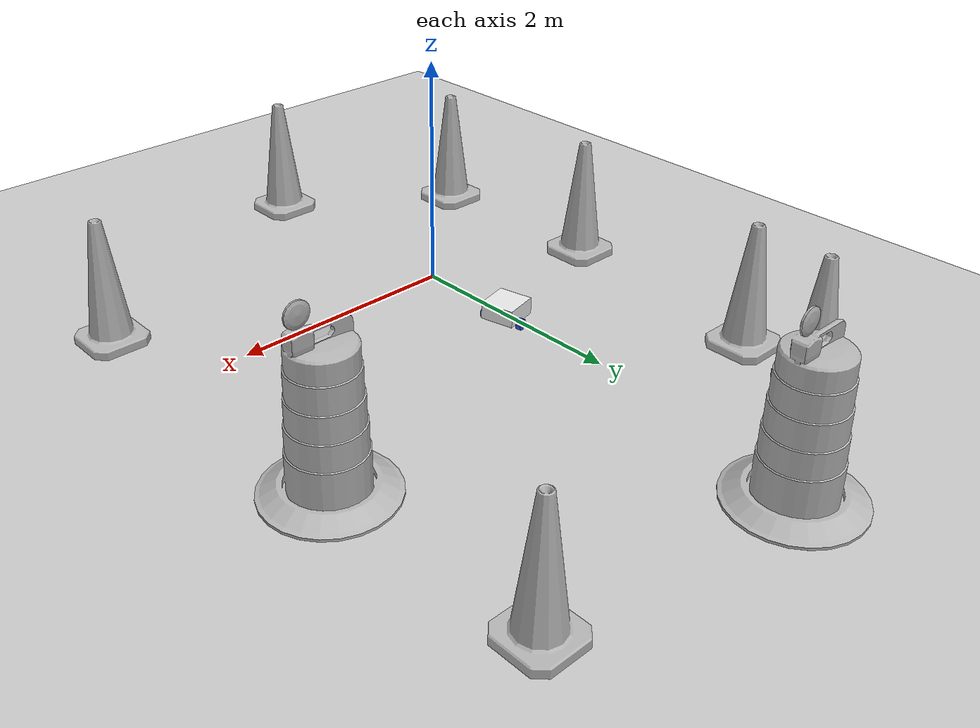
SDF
<sdf version="1.7">
 <world name="default">
  <light name="sun" type="directional">
   <pose>0 0 10 0 -0 0</pose>
   <diffuse>0.8 0.8 0.8 1</diffuse>
   <specular>0.2 0.2 0.2 1</specular>
   <attenuation>
    <range>1000</range>
    <constant>0.9</constant>
    <linear>0.01</linear>
    <quadratic>0.001</quadratic>
   </attenuation>
   <direction>-0.5 0.1 -0.9</direction>
   <spot><inner_angle>0</inner_angle><outer_angle>0</outer_angle><falloff>0</falloff></spot>
  </light>
  <model name="ground_plane">
   <static>1</static>
   <link name="link">
    <collision name="collision">
     <geometry><plane><normal>0 0 1</normal><size>100 100</size></plane></geometry>
     <surface><friction><ode><mu>100</mu><mu2>50</mu2></ode></friction></surface>
    </collision>
    <visual name="visual">
     <cast_shadows>0</cast_shadows>
     <geometry><plane><normal>0 0 1</normal><size>100 100</size></plane></geometry>
     <material>
      <script><uri>file://media/materials/scripts/gazebo.material</uri><name>Gazebo/Grey</name></script>
     </material>
    </visual>
   </link>
  </model>
  <gravity>0 0 -9.8</gravity>
  <magnetic_field>6e-06 2.3e-05 -4.2e-05</magnetic_field>
  <atmosphere type="adiabatic"/>
  <physics type="ode">
   <max_step_size>0.001</max_step_size>
   <real_time_factor>1</real_time_factor>
   <real_time_update_rate>1000</real_time_update_rate>
  </physics>
  <scene><ambient>0.4 0.4 0.4 1</ambient><background>0.7 0.7 0.7 1</background><shadows>1</shadows></scene>
  <audio><device>default</device></audio>
  <spherical_coordinates>
   <surface_model>EARTH_WGS84</surface_model>
   <latitude_deg>0</latitude_deg>
   <longitude_deg>0</longitude_deg>
   <elevation>0</elevation>
   <heading_deg>0</heading_deg>
  </spherical_coordinates>
  <model name="basic">
   <link name="base_link1">
    <inertial>
     <pose>0.065 0 0.0625 0 -0 0</pose>
     <mass>0.6</mass>
     <inertia>
      <ixx>0.00525625</ixx>
      <ixy>0</ixy>
      <ixz>0.0005625</ixz>
      <iyy>0.00593125</iyy>
      <iyz>0</iyz>
      <izz>0.008275</izz>
     </inertia>
    </inertial>
    <collision name="base_link1_fixed_joint_lump__chasis_collision">
     <pose>0.05 0 0.075 0 -0 0</pose>
     <geometry><box><size>0.3 0.3 0.15</size></box></geometry>
    </collision>
    <collision name="base_link1_fixed_joint_lump__caster_wheel_collision_1">
     <pose>0.14 0 0 0 -0 0</pose>
     <geometry><sphere><radius>0.05</radius></sphere></geometry>
     <surface><friction><ode><mu>0.01</mu><mu2>0.01</mu2></ode></friction></surface>
    </collision>
    <visual name="base_link1_fixed_joint_lump__chasis_visual">
     <pose>0.05 0 0.075 0 -0 0</pose>
     <geometry><box><size>0.3 0.3 0.15</size></box></geometry>
     <material>
      <script><name>Gazebo/White</name><uri>file://media/materials/scripts/gazebo.material</uri></script>
     </material>
    </visual>
    <visual name="base_link1_fixed_joint_lump__caster_wheel_visual_1">
     <pose>0.14 0 0 0 -0 0</pose>
     <geometry><sphere><radius>0.05</radius></sphere></geometry>
     <material>
      <script><name>Gazebo/Black</name><uri>file://media/materials/scripts/gazebo.material</uri></script>
     </material>
    </visual>
   </link>
   <joint name="left_wheel_joint" type="revolute">
    <pose relative_to="base_link1">0 0.175 0 -1.5708 0 0</pose>
    <parent>base_link1</parent>
    <child>left_wheel</child>
    <axis>
     <xyz>0 0 1</xyz>
     <limit><lower>-1e+16</lower><upper>1e+16</upper></limit>
     <dynamics><spring_reference>0</spring_reference><spring_stiffness>0</spring_stiffness></dynamics>
    </axis>
   </joint>
   <link name="left_wheel">
    <pose relative_to="left_wheel_joint">0 0 0 0 -0 0</pose>
    <inertial>
     <mass>0.1</mass>
     <inertia>
      <ixx>7.58333e-05</ixx>
      <ixy>0</ixy>
      <ixz>0</ixz>
      <iyy>7.58333e-05</iyy>
      <iyz>0</iyz>
      <izz>0.000125</izz>
     </inertia>
    </inertial>
    <collision name="left_wheel_collision">
     <geometry><cylinder><length>0.04</length><radius>0.05</radius></cylinder></geometry>
    </collision>
    <visual name="left_wheel_visual">
     <geometry><cylinder><length>0.04</length><radius>0.05</radius></cylinder></geometry>
     <material>
      <script><name>Gazebo/Blue</name><uri>file://media/materials/scripts/gazebo.material</uri></script>
     </material>
    </visual>
   </link>
   <joint name="right_wheel_joint" type="revolute">
    <pose relative_to="base_link1">0 -0.175 0 1.5708 -0 0</pose>
    <parent>base_link1</parent>
    <child>right_wheel</child>
    <axis>
     <xyz>0 0 -1</xyz>
     <limit><lower>-1e+16</lower><upper>1e+16</upper></limit>
     <dynamics><spring_reference>0</spring_reference><spring_stiffness>0</spring_stiffness></dynamics>
    </axis>
   </joint>
   <link name="right_wheel">
    <pose relative_to="right_wheel_joint">0 0 0 0 -0 0</pose>
    <inertial>
     <mass>0.1</mass>
     <inertia>
      <ixx>7.58333e-05</ixx>
      <ixy>0</ixy>
      <ixz>0</ixz>
      <iyy>7.58333e-05</iyy>
      <iyz>0</iyz>
      <izz>0.000125</izz>
     </inertia>
    </inertial>
    <collision name="right_wheel_collision">
     <geometry><cylinder><length>0.04</length><radius>0.05</radius></cylinder></geometry>
    </collision>
    <visual name="right_wheel_visual">
     <geometry><cylinder><length>0.04</length><radius>0.05</radius></cylinder></geometry>
     <material>
      <script><name>Gazebo/Blue</name><uri>file://media/materials/scripts/gazebo.material</uri></script>
     </material>
    </visual>
   </link>
   <static>0</static>
   <plugin name="diff_drive" filename="libgazebo_ros_diff_drive.so">
    <left_joint>left_wheel_joint</left_joint>
    <right_joint>right_wheel_joint</right_joint>
    <wheel_separation>0.35</wheel_separation>
    <wheel_diameter>0.1</wheel_diameter>
    <max_wheel_torque>200</max_wheel_torque>
    <max_wheel_acceleration>10.0</max_wheel_acceleration>
    <odometry_frame>odom</odometry_frame>
    <robot_base_frame>base_link</robot_base_frame>
    <publish_odom>1</publish_odom>
    <publish_odom_tf>1</publish_odom_tf>
    <publish_wheel_tf>1</publish_wheel_tf>
   </plugin>
   <pose>0.121211 1.01718 0.05 0 1.5e-05 -2.91623</pose>
  </model>
  <model name="Construction Barrel">
   <link name="link">
    <inertial>
     <pose>0 0 0.4 0 -0 0</pose>
     <mass>500</mass>
     <inertia><ixx>51.2096</ixx><iyy>51.2096</iyy><izz>25</izz><ixy>0</ixy><ixz>0</ixz><iyz>0</iyz></inertia>
    </inertial>
    <collision name="collision">
     <geometry><mesh><uri>model://construction_barrel/meshes/construction_barrel.dae</uri></mesh></geometry>
    </collision>
    <visual name="visual">
     <geometry><mesh><uri>model://construction_barrel/meshes/construction_barrel.dae</uri></mesh></geometry>
    </visual>
   </link>
   <pose>2.55956 1.83876 -1e-06 3e-06 7e-06 -1.5e-05</pose>
  </model>
  <model name="Construction Cone">
   <link name="link">
    <collision name="collision">
     <geometry>
      <mesh><scale>10 10 10</scale><uri>model://construction_cone/meshes/construction_cone.dae</uri></mesh>
     </geometry>
    </collision>
    <visual name="visual">
     <geometry>
      <mesh><scale>10 10 10</scale><uri>model://construction_cone/meshes/construction_cone.dae</uri></mesh>
     </geometry>
    </visual>
    <inertial>
     <inertia><ixx>1</ixx><ixy>0</ixy><ixz>0</ixz><iyy>1</iyy><iyz>0</iyz><izz>1</izz></inertia>
     <mass>1</mass>
    </inertial>
   </link>
   <pose>-1.27331 -1.16551 -8e-06 1e-06 -0 0</pose>
  </model>
  <model name="Construction Cone_0">
   <link name="link">
    <collision name="collision">
     <geometry>
      <mesh><scale>10 10 10</scale><uri>model://construction_cone/meshes/construction_cone.dae</uri></mesh>
     </geometry>
    </collision>
    <visual name="visual">
     <geometry>
      <mesh><scale>10 10 10</scale><uri>model://construction_cone/meshes/construction_cone.dae</uri></mesh>
     </geometry>
    </visual>
    <inertial>
     <inertia><ixx>1</ixx><ixy>0</ixy><ixz>0</ixz><iyy>1</iyy><iyz>0</iyz><izz>1</izz></inertia>
     <mass>1</mass>
    </inertial>
   </link>
   <pose>0.129894 -2.1069 -0 0 -1e-06 0</pose>
  </model>
  <model name="Construction Cone_1">
   <link name="link">
    <collision name="collision">
     <geometry>
      <mesh><scale>10 10 10</scale><uri>model://construction_cone/meshes/construction_cone.dae</uri></mesh>
     </geometry>
    </collision>
    <visual name="visual">
     <geometry>
      <mesh><scale>10 10 10</scale><uri>model://construction_cone/meshes/construction_cone.dae</uri></mesh>
     </geometry>
    </visual>
    <inertial>
     <inertia><ixx>1</ixx><ixy>0</ixy><ixz>0</ixz><iyy>1</iyy><iyz>0</iyz><izz>1</izz></inertia>
     <mass>1</mass>
    </inertial>
   </link>
   <pose>-1.34033 0.554121 -6e-06 -4e-06 0 0</pose>
  </model>
  <model name="Construction Cone_2">
   <link name="link">
    <collision name="collision">
     <geometry>
      <mesh><scale>10 10 10</scale><uri>model://construction_cone/meshes/construction_cone.dae</uri></mesh>
     </geometry>
    </collision>
    <visual name="visual">
     <geometry>
      <mesh><scale>10 10 10</scale><uri>model://construction_cone/meshes/construction_cone.dae</uri></mesh>
     </geometry>
    </visual>
    <inertial>
     <inertia><ixx>1</ixx><ixy>0</ixy><ixz>0</ixz><iyy>1</iyy><iyz>0</iyz><izz>1</izz></inertia>
     <mass>1</mass>
    </inertial>
   </link>
   <pose>-1.02416 3.25599 -9e-06 0 -0 0</pose>
  </model>
  <model name="Construction Cone_3">
   <link name="link">
    <collision name="collision">
     <geometry>
      <mesh><scale>10 10 10</scale><uri>model://construction_cone/meshes/construction_cone.dae</uri></mesh>
     </geometry>
    </collision>
    <visual name="visual">
     <geometry>
      <mesh><scale>10 10 10</scale><uri>model://construction_cone/meshes/construction_cone.dae</uri></mesh>
     </geometry>
    </visual>
    <inertial>
     <inertia><ixx>1</ixx><ixy>0</ixy><ixz>0</ixz><iyy>1</iyy><iyz>0</iyz><izz>1</izz></inertia>
     <mass>1</mass>
    </inertial>
   </link>
   <pose>-1.07459 2.5864 0 -0 -0 -0</pose>
  </model>
  <model name="Construction Cone_4">
   <link name="link">
    <collision name="collision">
     <geometry>
      <mesh><scale>10 10 10</scale><uri>model://construction_cone/meshes/construction_cone.dae</uri></mesh>
     </geometry>
    </collision>
    <visual name="visual">
     <geometry>
      <mesh><scale>10 10 10</scale><uri>model://construction_cone/meshes/construction_cone.dae</uri></mesh>
     </geometry>
    </visual>
    <inertial>
     <inertia><ixx>1</ixx><ixy>0</ixy><ixz>0</ixz><iyy>1</iyy><iyz>0</iyz><izz>1</izz></inertia>
     <mass>1</mass>
    </inertial>
   </link>
   <pose>2.48688 3.7272 -2e-06 -3e-06 -1e-06 -0</pose>
  </model>
  <model name="Construction Cone_5">
   <link name="link">
    <collision name="collision">
     <geometry>
      <mesh><scale>10 10 10</scale><uri>model://construction_cone/meshes/construction_cone.dae</uri></mesh>
     </geometry>
    </collision>
    <visual name="visual">
     <geometry>
      <mesh><scale>10 10 10</scale><uri>model://construction_cone/meshes/construction_cone.dae</uri></mesh>
     </geometry>
    </visual>
    <inertial>
     <inertia><ixx>1</ixx><ixy>0</ixy><ixz>0</ixz><iyy>1</iyy><iyz>0</iyz><izz>1</izz></inertia>
     <mass>1</mass>
    </inertial>
   </link>
   <pose>2.68069 -0.927969 -0 0 -0 0</pose>
  </model>
  <model name="Construction Barrel_0">
   <link name="link">
    <inertial>
     <pose>0 0 0.4 0 -0 0</pose>
     <mass>500</mass>
     <inertia><ixx>51.2096</ixx><iyy>51.2096</iyy><izz>25</izz><ixy>0</ixy><ixz>0</ixz><iyz>0</iyz></inertia>
    </inertial>
    <collision name="collision">
     <geometry><mesh><uri>model://construction_barrel/meshes/construction_barrel.dae</uri></mesh></geometry>
    </collision>
    <visual name="visual">
     <geometry><mesh><uri>model://construction_barrel/meshes/construction_barrel.dae</uri></mesh></geometry>
    </visual>
   </link>
   <pose>0.316966 3.99252 -1e-06 3e-06 -2e-06 -2e-06</pose>
  </model>
 </world>
</sdf>
